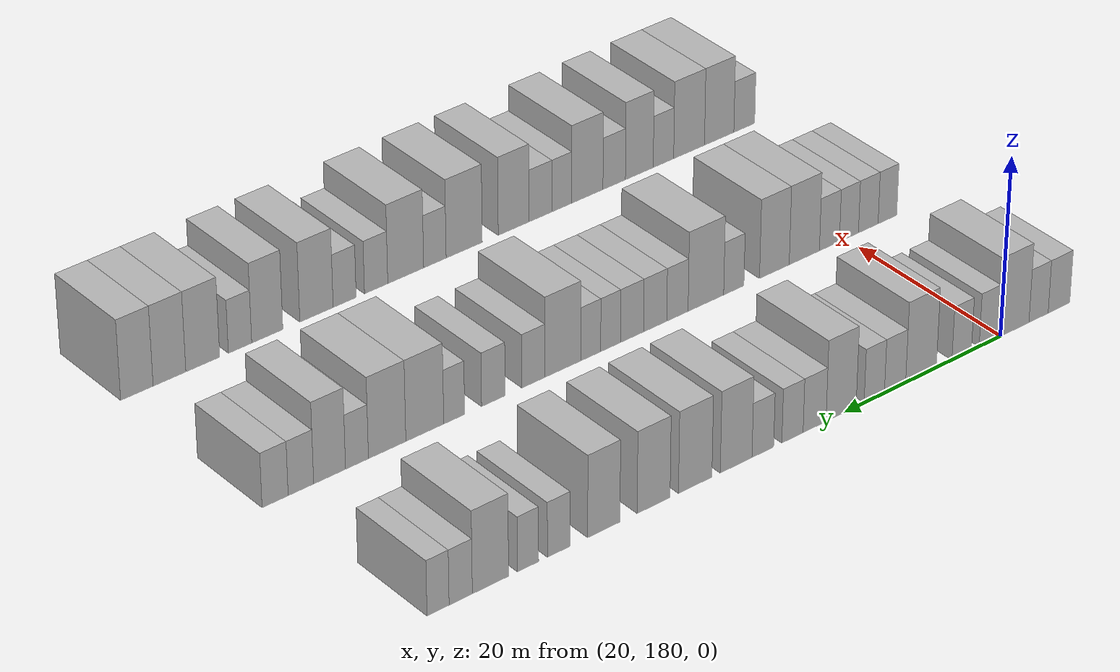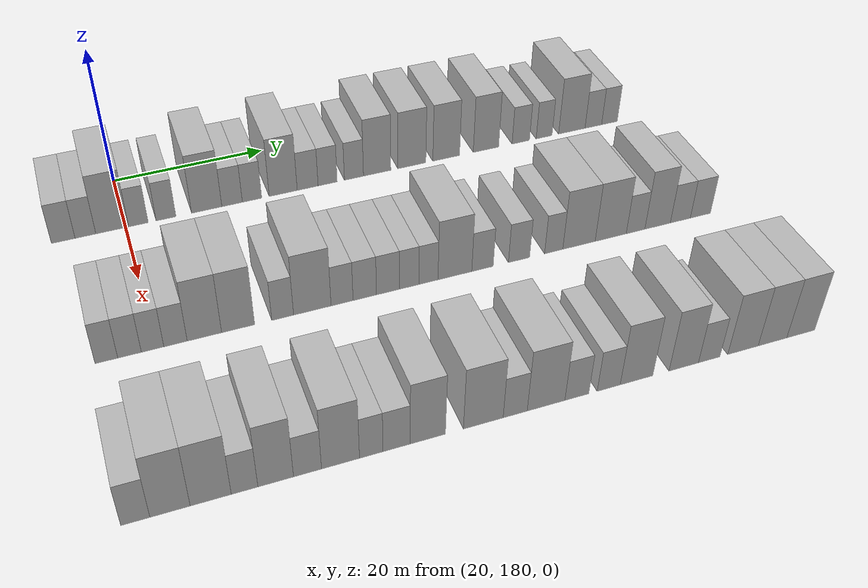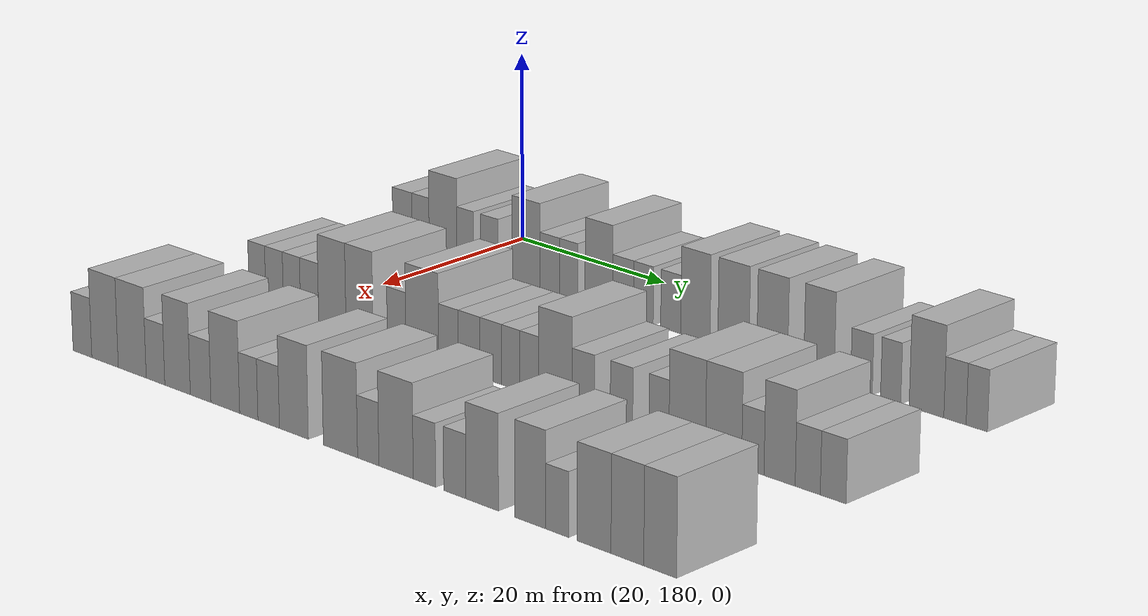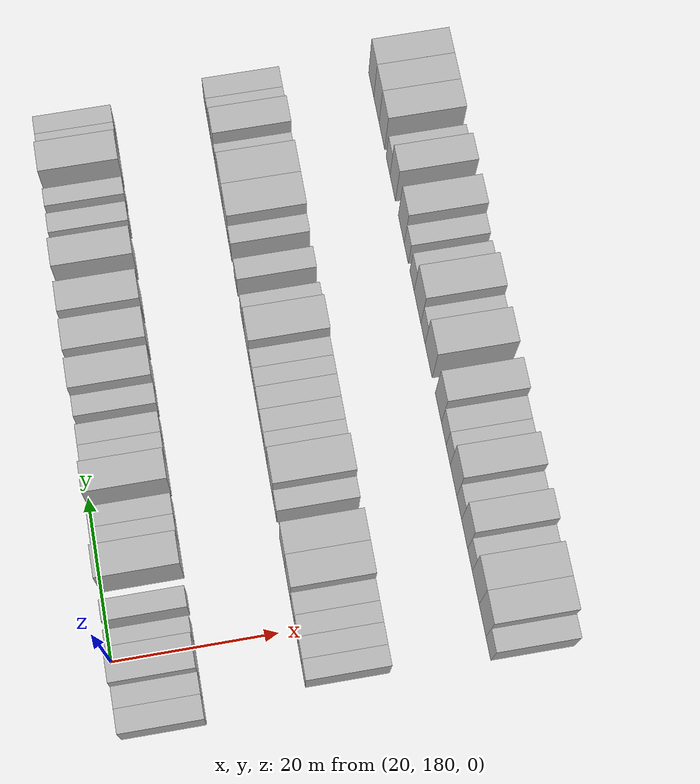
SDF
<sdf version="1.6">
 <world name="default">
  <model name="building_105">
   <static>1</static>
   <pose>25.0000 172.3407 0 0.000000 0.000000 0.000000</pose>
   <link name="link">
    <pose>0 0 3.00 0 0 0</pose>
    <collision name="collision"><geometry><box><size>10.0000 2.8734 6.0000</size></box></geometry></collision>
    <visual name="visual">
     <cast_shadows>0</cast_shadows>
     <geometry><box><size>10.0000 2.8734 6.0000</size></box></geometry>
     <material>
      <script>
       <uri>model://HANNAS_wall/materials/scripts</uri>
       <uri>model://HANNAS_wall/materials/textures</uri>
       <name>vrc/HANNAS_wall</name>
      </script>
     </material>
    </visual>
   </link>
  </model>
  <model name="building_106">
   <static>1</static>
   <pose>25.0000 175.0475 0 0.000000 0.000000 0.000000</pose>
   <link name="link">
    <pose>0 0 3.00 0 0 0</pose>
    <collision name="collision"><geometry><box><size>10.0000 2.5402 6.0000</size></box></geometry></collision>
    <visual name="visual">
     <cast_shadows>0</cast_shadows>
     <geometry><box><size>10.0000 2.5402 6.0000</size></box></geometry>
     <material>
      <script>
       <uri>model://HANNAS_wall/materials/scripts</uri>
       <uri>model://HANNAS_wall/materials/textures</uri>
       <name>vrc/HANNAS_wall</name>
      </script>
     </material>
    </visual>
   </link>
  </model>
  <model name="building_107">
   <static>1</static>
   <pose>25.0000 178.3508 0 0.000000 0.000000 0.000000</pose>
   <link name="link">
    <pose>0 0 4.50 0 0 0</pose>
    <collision name="collision"><geometry><box><size>10.0000 4.0666 9.0000</size></box></geometry></collision>
    <visual name="visual">
     <cast_shadows>0</cast_shadows>
     <geometry><box><size>10.0000 4.0666 9.0000</size></box></geometry>
     <material>
      <script>
       <uri>model://HANNAS_wall/materials/scripts</uri>
       <uri>model://HANNAS_wall/materials/textures</uri>
       <name>vrc/HANNAS_wall</name>
      </script>
     </material>
    </visual>
   </link>
  </model>
  <model name="building_108">
   <static>1</static>
   <pose>25.0000 181.6114 0 0.000000 0.000000 0.000000</pose>
   <link name="link">
    <pose>0 0 3.00 0 0 0</pose>
    <collision name="collision"><geometry><box><size>10.0000 2.4546 6.0000</size></box></geometry></collision>
    <visual name="visual">
     <cast_shadows>0</cast_shadows>
     <geometry><box><size>10.0000 2.4546 6.0000</size></box></geometry>
     <material>
      <script>
       <uri>model://HANNAS_wall/materials/scripts</uri>
       <uri>model://HANNAS_wall/materials/textures</uri>
       <name>vrc/HANNAS_wall</name>
      </script>
     </material>
    </visual>
   </link>
  </model>
  <model name="building_109">
   <static>1</static>
   <pose>25.0000 185.0974 0 0.000000 0.000000 0.000000</pose>
   <link name="link">
    <pose>0 0 3.00 0 0 0</pose>
    <collision name="collision"><geometry><box><size>10.0000 2.5174 6.0000</size></box></geometry></collision>
    <visual name="visual">
     <cast_shadows>0</cast_shadows>
     <geometry><box><size>10.0000 2.5174 6.0000</size></box></geometry>
     <material>
      <script>
       <uri>model://HANNAS_wall/materials/scripts</uri>
       <uri>model://HANNAS_wall/materials/textures</uri>
       <name>vrc/HANNAS_wall</name>
      </script>
     </material>
    </visual>
   </link>
  </model>
  <model name="building_110">
   <static>1</static>
   <pose>25.0000 190.3152 0 0.000000 0.000000 0.000000</pose>
   <link name="link">
    <pose>0 0 4.50 0 0 0</pose>
    <collision name="collision"><geometry><box><size>10.0000 3.9181 9.0000</size></box></geometry></collision>
    <visual name="visual">
     <cast_shadows>0</cast_shadows>
     <geometry><box><size>10.0000 3.9181 9.0000</size></box></geometry>
     <material>
      <script>
       <uri>model://HANNAS_wall/materials/scripts</uri>
       <uri>model://HANNAS_wall/materials/textures</uri>
       <name>vrc/HANNAS_wall</name>
      </script>
     </material>
    </visual>
   </link>
  </model>
  <model name="building_111">
   <static>1</static>
   <pose>25.0000 193.6157 0 0.000000 0.000000 0.000000</pose>
   <link name="link">
    <pose>0 0 3.00 0 0 0</pose>
    <collision name="collision"><geometry><box><size>10.0000 2.6829 6.0000</size></box></geometry></collision>
    <visual name="visual">
     <cast_shadows>0</cast_shadows>
     <geometry><box><size>10.0000 2.6829 6.0000</size></box></geometry>
     <material>
      <script>
       <uri>model://HANNAS_wall/materials/scripts</uri>
       <uri>model://HANNAS_wall/materials/textures</uri>
       <name>vrc/HANNAS_wall</name>
      </script>
     </material>
    </visual>
   </link>
  </model>
  <model name="building_112">
   <static>1</static>
   <pose>25.0000 196.2339 0 0.000000 0.000000 0.000000</pose>
   <link name="link">
    <pose>0 0 3.00 0 0 0</pose>
    <collision name="collision"><geometry><box><size>10.0000 2.5535 6.0000</size></box></geometry></collision>
    <visual name="visual">
     <cast_shadows>0</cast_shadows>
     <geometry><box><size>10.0000 2.5535 6.0000</size></box></geometry>
     <material>
      <script>
       <uri>model://HANNAS_wall/materials/scripts</uri>
       <uri>model://HANNAS_wall/materials/textures</uri>
       <name>vrc/HANNAS_wall</name>
      </script>
     </material>
    </visual>
   </link>
  </model>
  <model name="building_113">
   <static>1</static>
   <pose>25.0000 200.3856 0 0.000000 0.000000 0.000000</pose>
   <link name="link">
    <pose>0 0 4.50 0 0 0</pose>
    <collision name="collision"><geometry><box><size>10.0000 3.7498 9.0000</size></box></geometry></collision>
    <visual name="visual">
     <cast_shadows>0</cast_shadows>
     <geometry><box><size>10.0000 3.7498 9.0000</size></box></geometry>
     <material>
      <script>
       <uri>model://HANNAS_wall/materials/scripts</uri>
       <uri>model://HANNAS_wall/materials/textures</uri>
       <name>vrc/HANNAS_wall</name>
      </script>
     </material>
    </visual>
   </link>
  </model>
  <model name="building_114">
   <static>1</static>
   <pose>25.0000 203.6752 0 0.000000 0.000000 0.000000</pose>
   <link name="link">
    <pose>0 0 3.00 0 0 0</pose>
    <collision name="collision"><geometry><box><size>10.0000 2.8295 6.0000</size></box></geometry></collision>
    <visual name="visual">
     <cast_shadows>0</cast_shadows>
     <geometry><box><size>10.0000 2.8295 6.0000</size></box></geometry>
     <material>
      <script>
       <uri>model://HANNAS_wall/materials/scripts</uri>
       <uri>model://HANNAS_wall/materials/textures</uri>
       <name>vrc/HANNAS_wall</name>
      </script>
     </material>
    </visual>
   </link>
  </model>
  <model name="building_115">
   <static>1</static>
   <pose>25.0000 206.3929 0 0.000000 0.000000 0.000000</pose>
   <link name="link">
    <pose>0 0 3.00 0 0 0</pose>
    <collision name="collision"><geometry><box><size>10.0000 2.6058 6.0000</size></box></geometry></collision>
    <visual name="visual">
     <cast_shadows>0</cast_shadows>
     <geometry><box><size>10.0000 2.6058 6.0000</size></box></geometry>
     <material>
      <script>
       <uri>model://HANNAS_wall/materials/scripts</uri>
       <uri>model://HANNAS_wall/materials/textures</uri>
       <name>vrc/HANNAS_wall</name>
      </script>
     </material>
    </visual>
   </link>
  </model>
  <model name="building_116">
   <static>1</static>
   <pose>25.0000 210.0129 0 0.000000 0.000000 0.000000</pose>
   <link name="link">
    <pose>0 0 3.00 0 0 0</pose>
    <collision name="collision"><geometry><box><size>10.0000 2.6343 6.0000</size></box></geometry></collision>
    <visual name="visual">
     <cast_shadows>0</cast_shadows>
     <geometry><box><size>10.0000 2.6343 6.0000</size></box></geometry>
     <material>
      <script>
       <uri>model://HANNAS_wall/materials/scripts</uri>
       <uri>model://HANNAS_wall/materials/textures</uri>
       <name>vrc/HANNAS_wall</name>
      </script>
     </material>
    </visual>
   </link>
  </model>
  <model name="building_117">
   <static>1</static>
   <pose>25.0000 213.2417 0 0.000000 0.000000 0.000000</pose>
   <link name="link">
    <pose>0 0 4.50 0 0 0</pose>
    <collision name="collision"><geometry><box><size>10.0000 3.8233 9.0000</size></box></geometry></collision>
    <visual name="visual">
     <cast_shadows>0</cast_shadows>
     <geometry><box><size>10.0000 3.8233 9.0000</size></box></geometry>
     <material>
      <script>
       <uri>model://HANNAS_wall/materials/scripts</uri>
       <uri>model://HANNAS_wall/materials/textures</uri>
       <name>vrc/HANNAS_wall</name>
      </script>
     </material>
    </visual>
   </link>
  </model>
  <model name="building_118">
   <static>1</static>
   <pose>25.0000 218.1422 0 0.000000 0.000000 0.000000</pose>
   <link name="link">
    <pose>0 0 4.50 0 0 0</pose>
    <collision name="collision"><geometry><box><size>10.0000 3.9777 9.0000</size></box></geometry></collision>
    <visual name="visual">
     <cast_shadows>0</cast_shadows>
     <geometry><box><size>10.0000 3.9777 9.0000</size></box></geometry>
     <material>
      <script>
       <uri>model://HANNAS_wall/materials/scripts</uri>
       <uri>model://HANNAS_wall/materials/textures</uri>
       <name>vrc/HANNAS_wall</name>
      </script>
     </material>
    </visual>
   </link>
  </model>
  <model name="building_119">
   <static>1</static>
   <pose>25.0000 223.0648 0 0.000000 0.000000 0.000000</pose>
   <link name="link">
    <pose>0 0 4.50 0 0 0</pose>
    <collision name="collision"><geometry><box><size>10.0000 3.8676 9.0000</size></box></geometry></collision>
    <visual name="visual">
     <cast_shadows>0</cast_shadows>
     <geometry><box><size>10.0000 3.8676 9.0000</size></box></geometry>
     <material>
      <script>
       <uri>model://HANNAS_wall/materials/scripts</uri>
       <uri>model://HANNAS_wall/materials/textures</uri>
       <name>vrc/HANNAS_wall</name>
      </script>
     </material>
    </visual>
   </link>
  </model>
  <model name="building_120">
   <static>1</static>
   <pose>25.0000 228.8694 0 0.000000 0.000000 0.000000</pose>
   <link name="link">
    <pose>0 0 4.50 0 0 0</pose>
    <collision name="collision"><geometry><box><size>10.0000 3.7416 9.0000</size></box></geometry></collision>
    <visual name="visual">
     <cast_shadows>0</cast_shadows>
     <geometry><box><size>10.0000 3.7416 9.0000</size></box></geometry>
     <material>
      <script>
       <uri>model://HANNAS_wall/materials/scripts</uri>
       <uri>model://HANNAS_wall/materials/textures</uri>
       <name>vrc/HANNAS_wall</name>
      </script>
     </material>
    </visual>
   </link>
  </model>
  <model name="building_121">
   <static>1</static>
   <pose>25.0000 234.0469 0 0.000000 0.000000 0.000000</pose>
   <link name="link">
    <pose>0 0 3.00 0 0 0</pose>
    <collision name="collision"><geometry><box><size>10.0000 2.6135 6.0000</size></box></geometry></collision>
    <visual name="visual">
     <cast_shadows>0</cast_shadows>
     <geometry><box><size>10.0000 2.6135 6.0000</size></box></geometry>
     <material>
      <script>
       <uri>model://HANNAS_wall/materials/scripts</uri>
       <uri>model://HANNAS_wall/materials/textures</uri>
       <name>vrc/HANNAS_wall</name>
      </script>
     </material>
    </visual>
   </link>
  </model>
  <model name="building_122">
   <static>1</static>
   <pose>25.0000 237.5542 0 0.000000 0.000000 0.000000</pose>
   <link name="link">
    <pose>0 0 3.00 0 0 0</pose>
    <collision name="collision"><geometry><box><size>10.0000 2.4011 6.0000</size></box></geometry></collision>
    <visual name="visual">
     <cast_shadows>0</cast_shadows>
     <geometry><box><size>10.0000 2.4011 6.0000</size></box></geometry>
     <material>
      <script>
       <uri>model://HANNAS_wall/materials/scripts</uri>
       <uri>model://HANNAS_wall/materials/textures</uri>
       <name>vrc/HANNAS_wall</name>
      </script>
     </material>
    </visual>
   </link>
  </model>
  <model name="building_123">
   <static>1</static>
   <pose>25.0000 241.7866 0 0.000000 0.000000 0.000000</pose>
   <link name="link">
    <pose>0 0 4.50 0 0 0</pose>
    <collision name="collision"><geometry><box><size>10.0000 4.0637 9.0000</size></box></geometry></collision>
    <visual name="visual">
     <cast_shadows>0</cast_shadows>
     <geometry><box><size>10.0000 4.0637 9.0000</size></box></geometry>
     <material>
      <script>
       <uri>model://HANNAS_wall/materials/scripts</uri>
       <uri>model://HANNAS_wall/materials/textures</uri>
       <name>vrc/HANNAS_wall</name>
      </script>
     </material>
    </visual>
   </link>
  </model>
  <model name="building_124">
   <static>1</static>
   <pose>25.0000 245.1089 0 0.000000 0.000000 0.000000</pose>
   <link name="link">
    <pose>0 0 3.00 0 0 0</pose>
    <collision name="collision"><geometry><box><size>10.0000 2.5809 6.0000</size></box></geometry></collision>
    <visual name="visual">
     <cast_shadows>0</cast_shadows>
     <geometry><box><size>10.0000 2.5809 6.0000</size></box></geometry>
     <material>
      <script>
       <uri>model://HANNAS_wall/materials/scripts</uri>
       <uri>model://HANNAS_wall/materials/textures</uri>
       <name>vrc/HANNAS_wall</name>
      </script>
     </material>
    </visual>
   </link>
  </model>
  <model name="building_125">
   <static>1</static>
   <pose>25.0000 247.6204 0 0.000000 0.000000 0.000000</pose>
   <link name="link">
    <pose>0 0 3.00 0 0 0</pose>
    <collision name="collision"><geometry><box><size>10.0000 2.4420 6.0000</size></box></geometry></collision>
    <visual name="visual">
     <cast_shadows>0</cast_shadows>
     <geometry><box><size>10.0000 2.4420 6.0000</size></box></geometry>
     <material>
      <script>
       <uri>model://HANNAS_wall/materials/scripts</uri>
       <uri>model://HANNAS_wall/materials/textures</uri>
       <name>vrc/HANNAS_wall</name>
      </script>
     </material>
    </visual>
   </link>
  </model>
  <model name="building_235">
   <static>1</static>
   <pose>47.0000 174.4356 0 0.000000 0.000000 0.000000</pose>
   <link name="link">
    <pose>0 0 3.00 0 0 0</pose>
    <collision name="collision"><geometry><box><size>10.0000 2.4829 6.0000</size></box></geometry></collision>
    <visual name="visual">
     <cast_shadows>0</cast_shadows>
     <geometry><box><size>10.0000 2.4829 6.0000</size></box></geometry>
     <material>
      <script>
       <uri>model://HANNAS_wall/materials/scripts</uri>
       <uri>model://HANNAS_wall/materials/textures</uri>
       <name>vrc/HANNAS_wall</name>
      </script>
     </material>
    </visual>
   </link>
  </model>
  <model name="building_236">
   <static>1</static>
   <pose>47.0000 176.9797 0 0.000000 0.000000 0.000000</pose>
   <link name="link">
    <pose>0 0 3.00 0 0 0</pose>
    <collision name="collision"><geometry><box><size>10.0000 2.6053 6.0000</size></box></geometry></collision>
    <visual name="visual">
     <cast_shadows>0</cast_shadows>
     <geometry><box><size>10.0000 2.6053 6.0000</size></box></geometry>
     <material>
      <script>
       <uri>model://HANNAS_wall/materials/scripts</uri>
       <uri>model://HANNAS_wall/materials/textures</uri>
       <name>vrc/HANNAS_wall</name>
      </script>
     </material>
    </visual>
   </link>
  </model>
  <model name="building_237">
   <static>1</static>
   <pose>47.0000 179.5363 0 0.000000 0.000000 0.000000</pose>
   <link name="link">
    <pose>0 0 3.00 0 0 0</pose>
    <collision name="collision"><geometry><box><size>10.0000 2.5080 6.0000</size></box></geometry></collision>
    <visual name="visual">
     <cast_shadows>0</cast_shadows>
     <geometry><box><size>10.0000 2.5080 6.0000</size></box></geometry>
     <material>
      <script>
       <uri>model://HANNAS_wall/materials/scripts</uri>
       <uri>model://HANNAS_wall/materials/textures</uri>
       <name>vrc/HANNAS_wall</name>
      </script>
     </material>
    </visual>
   </link>
  </model>
  <model name="building_238">
   <static>1</static>
   <pose>47.0000 182.1052 0 0.000000 0.000000 0.000000</pose>
   <link name="link">
    <pose>0 0 3.00 0 0 0</pose>
    <collision name="collision"><geometry><box><size>10.0000 2.6297 6.0000</size></box></geometry></collision>
    <visual name="visual">
     <cast_shadows>0</cast_shadows>
     <geometry><box><size>10.0000 2.6297 6.0000</size></box></geometry>
     <material>
      <script>
       <uri>model://HANNAS_wall/materials/scripts</uri>
       <uri>model://HANNAS_wall/materials/textures</uri>
       <name>vrc/HANNAS_wall</name>
      </script>
     </material>
    </visual>
   </link>
  </model>
  <model name="building_239">
   <static>1</static>
   <pose>47.0000 185.3836 0 0.000000 0.000000 0.000000</pose>
   <link name="link">
    <pose>0 0 4.50 0 0 0</pose>
    <collision name="collision"><geometry><box><size>10.0000 3.9271 9.0000</size></box></geometry></collision>
    <visual name="visual">
     <cast_shadows>0</cast_shadows>
     <geometry><box><size>10.0000 3.9271 9.0000</size></box></geometry>
     <material>
      <script>
       <uri>model://HANNAS_wall/materials/scripts</uri>
       <uri>model://HANNAS_wall/materials/textures</uri>
       <name>vrc/HANNAS_wall</name>
      </script>
     </material>
    </visual>
   </link>
  </model>
  <model name="building_240">
   <static>1</static>
   <pose>47.0000 189.2624 0 0.000000 0.000000 0.000000</pose>
   <link name="link">
    <pose>0 0 4.50 0 0 0</pose>
    <collision name="collision"><geometry><box><size>10.0000 3.8306 9.0000</size></box></geometry></collision>
    <visual name="visual">
     <cast_shadows>0</cast_shadows>
     <geometry><box><size>10.0000 3.8306 9.0000</size></box></geometry>
     <material>
      <script>
       <uri>model://HANNAS_wall/materials/scripts</uri>
       <uri>model://HANNAS_wall/materials/textures</uri>
       <name>vrc/HANNAS_wall</name>
      </script>
     </material>
    </visual>
   </link>
  </model>
  <model name="building_241">
   <static>1</static>
   <pose>47.0000 194.4672 0 0.000000 0.000000 0.000000</pose>
   <link name="link">
    <pose>0 0 3.00 0 0 0</pose>
    <collision name="collision"><geometry><box><size>10.0000 2.5790 6.0000</size></box></geometry></collision>
    <visual name="visual">
     <cast_shadows>0</cast_shadows>
     <geometry><box><size>10.0000 2.5790 6.0000</size></box></geometry>
     <material>
      <script>
       <uri>model://HANNAS_wall/materials/scripts</uri>
       <uri>model://HANNAS_wall/materials/textures</uri>
       <name>vrc/HANNAS_wall</name>
      </script>
     </material>
    </visual>
   </link>
  </model>
  <model name="building_242">
   <static>1</static>
   <pose>47.0000 198.0039 0 0.000000 0.000000 0.000000</pose>
   <link name="link">
    <pose>0 0 4.50 0 0 0</pose>
    <collision name="collision"><geometry><box><size>10.0000 4.4943 9.0000</size></box></geometry></collision>
    <visual name="visual">
     <cast_shadows>0</cast_shadows>
     <geometry><box><size>10.0000 4.4943 9.0000</size></box></geometry>
     <material>
      <script>
       <uri>model://HANNAS_wall/materials/scripts</uri>
       <uri>model://HANNAS_wall/materials/textures</uri>
       <name>vrc/HANNAS_wall</name>
      </script>
     </material>
    </visual>
   </link>
  </model>
  <model name="building_243">
   <static>1</static>
   <pose>47.0000 201.5876 0 0.000000 0.000000 0.000000</pose>
   <link name="link">
    <pose>0 0 3.00 0 0 0</pose>
    <collision name="collision"><geometry><box><size>10.0000 2.6731 6.0000</size></box></geometry></collision>
    <visual name="visual">
     <cast_shadows>0</cast_shadows>
     <geometry><box><size>10.0000 2.6731 6.0000</size></box></geometry>
     <material>
      <script>
       <uri>model://HANNAS_wall/materials/scripts</uri>
       <uri>model://HANNAS_wall/materials/textures</uri>
       <name>vrc/HANNAS_wall</name>
      </script>
     </material>
    </visual>
   </link>
  </model>
  <model name="building_244">
   <static>1</static>
   <pose>47.0000 204.3610 0 0.000000 0.000000 0.000000</pose>
   <link name="link">
    <pose>0 0 3.00 0 0 0</pose>
    <collision name="collision"><geometry><box><size>10.0000 2.8737 6.0000</size></box></geometry></collision>
    <visual name="visual">
     <cast_shadows>0</cast_shadows>
     <geometry><box><size>10.0000 2.8737 6.0000</size></box></geometry>
     <material>
      <script>
       <uri>model://HANNAS_wall/materials/scripts</uri>
       <uri>model://HANNAS_wall/materials/textures</uri>
       <name>vrc/HANNAS_wall</name>
      </script>
     </material>
    </visual>
   </link>
  </model>
  <model name="building_245">
   <static>1</static>
   <pose>47.0000 207.2297 0 0.000000 0.000000 0.000000</pose>
   <link name="link">
    <pose>0 0 3.00 0 0 0</pose>
    <collision name="collision"><geometry><box><size>10.0000 2.8636 6.0000</size></box></geometry></collision>
    <visual name="visual">
     <cast_shadows>0</cast_shadows>
     <geometry><box><size>10.0000 2.8636 6.0000</size></box></geometry>
     <material>
      <script>
       <uri>model://HANNAS_wall/materials/scripts</uri>
       <uri>model://HANNAS_wall/materials/textures</uri>
       <name>vrc/HANNAS_wall</name>
      </script>
     </material>
    </visual>
   </link>
  </model>
  <model name="building_246">
   <static>1</static>
   <pose>47.0000 209.8744 0 0.000000 0.000000 0.000000</pose>
   <link name="link">
    <pose>0 0 3.00 0 0 0</pose>
    <collision name="collision"><geometry><box><size>10.0000 2.4258 6.0000</size></box></geometry></collision>
    <visual name="visual">
     <cast_shadows>0</cast_shadows>
     <geometry><box><size>10.0000 2.4258 6.0000</size></box></geometry>
     <material>
      <script>
       <uri>model://HANNAS_wall/materials/scripts</uri>
       <uri>model://HANNAS_wall/materials/textures</uri>
       <name>vrc/HANNAS_wall</name>
      </script>
     </material>
    </visual>
   </link>
  </model>
  <model name="building_247">
   <static>1</static>
   <pose>47.0000 212.2955 0 0.000000 0.000000 0.000000</pose>
   <link name="link">
    <pose>0 0 3.00 0 0 0</pose>
    <collision name="collision"><geometry><box><size>10.0000 2.4165 6.0000</size></box></geometry></collision>
    <visual name="visual">
     <cast_shadows>0</cast_shadows>
     <geometry><box><size>10.0000 2.4165 6.0000</size></box></geometry>
     <material>
      <script>
       <uri>model://HANNAS_wall/materials/scripts</uri>
       <uri>model://HANNAS_wall/materials/textures</uri>
       <name>vrc/HANNAS_wall</name>
      </script>
     </material>
    </visual>
   </link>
  </model>
  <model name="building_248">
   <static>1</static>
   <pose>47.0000 215.6705 0 0.000000 0.000000 0.000000</pose>
   <link name="link">
    <pose>0 0 4.50 0 0 0</pose>
    <collision name="collision"><geometry><box><size>10.0000 4.3336 9.0000</size></box></geometry></collision>
    <visual name="visual">
     <cast_shadows>0</cast_shadows>
     <geometry><box><size>10.0000 4.3336 9.0000</size></box></geometry>
     <material>
      <script>
       <uri>model://HANNAS_wall/materials/scripts</uri>
       <uri>model://HANNAS_wall/materials/textures</uri>
       <name>vrc/HANNAS_wall</name>
      </script>
     </material>
    </visual>
   </link>
  </model>
  <model name="building_249">
   <static>1</static>
   <pose>47.0000 219.2306 0 0.000000 0.000000 0.000000</pose>
   <link name="link">
    <pose>0 0 3.00 0 0 0</pose>
    <collision name="collision"><geometry><box><size>10.0000 2.7866 6.0000</size></box></geometry></collision>
    <visual name="visual">
     <cast_shadows>0</cast_shadows>
     <geometry><box><size>10.0000 2.7866 6.0000</size></box></geometry>
     <material>
      <script>
       <uri>model://HANNAS_wall/materials/scripts</uri>
       <uri>model://HANNAS_wall/materials/textures</uri>
       <name>vrc/HANNAS_wall</name>
      </script>
     </material>
    </visual>
   </link>
  </model>
  <model name="building_250">
   <static>1</static>
   <pose>47.0000 224.0211 0 0.000000 0.000000 0.000000</pose>
   <link name="link">
    <pose>0 0 3.00 0 0 0</pose>
    <collision name="collision"><geometry><box><size>10.0000 2.7943 6.0000</size></box></geometry></collision>
    <visual name="visual">
     <cast_shadows>0</cast_shadows>
     <geometry><box><size>10.0000 2.7943 6.0000</size></box></geometry>
     <material>
      <script>
       <uri>model://HANNAS_wall/materials/scripts</uri>
       <uri>model://HANNAS_wall/materials/textures</uri>
       <name>vrc/HANNAS_wall</name>
      </script>
     </material>
    </visual>
   </link>
  </model>
  <model name="building_251">
   <static>1</static>
   <pose>47.0000 228.6425 0 0.000000 0.000000 0.000000</pose>
   <link name="link">
    <pose>0 0 3.00 0 0 0</pose>
    <collision name="collision"><geometry><box><size>10.0000 2.4486 6.0000</size></box></geometry></collision>
    <visual name="visual">
     <cast_shadows>0</cast_shadows>
     <geometry><box><size>10.0000 2.4486 6.0000</size></box></geometry>
     <material>
      <script>
       <uri>model://HANNAS_wall/materials/scripts</uri>
       <uri>model://HANNAS_wall/materials/textures</uri>
       <name>vrc/HANNAS_wall</name>
      </script>
     </material>
    </visual>
   </link>
  </model>
  <model name="building_252">
   <static>1</static>
   <pose>47.0000 232.0695 0 0.000000 0.000000 0.000000</pose>
   <link name="link">
    <pose>0 0 4.50 0 0 0</pose>
    <collision name="collision"><geometry><box><size>10.0000 4.4053 9.0000</size></box></geometry></collision>
    <visual name="visual">
     <cast_shadows>0</cast_shadows>
     <geometry><box><size>10.0000 4.4053 9.0000</size></box></geometry>
     <material>
      <script>
       <uri>model://HANNAS_wall/materials/scripts</uri>
       <uri>model://HANNAS_wall/materials/textures</uri>
       <name>vrc/HANNAS_wall</name>
      </script>
     </material>
    </visual>
   </link>
  </model>
  <model name="building_253">
   <static>1</static>
   <pose>47.0000 236.4231 0 0.000000 0.000000 0.000000</pose>
   <link name="link">
    <pose>0 0 4.50 0 0 0</pose>
    <collision name="collision"><geometry><box><size>10.0000 4.3019 9.0000</size></box></geometry></collision>
    <visual name="visual">
     <cast_shadows>0</cast_shadows>
     <geometry><box><size>10.0000 4.3019 9.0000</size></box></geometry>
     <material>
      <script>
       <uri>model://HANNAS_wall/materials/scripts</uri>
       <uri>model://HANNAS_wall/materials/textures</uri>
       <name>vrc/HANNAS_wall</name>
      </script>
     </material>
    </visual>
   </link>
  </model>
  <model name="building_254">
   <static>1</static>
   <pose>47.0000 239.8808 0 0.000000 0.000000 0.000000</pose>
   <link name="link">
    <pose>0 0 3.00 0 0 0</pose>
    <collision name="collision"><geometry><box><size>10.0000 2.6136 6.0000</size></box></geometry></collision>
    <visual name="visual">
     <cast_shadows>0</cast_shadows>
     <geometry><box><size>10.0000 2.6136 6.0000</size></box></geometry>
     <material>
      <script>
       <uri>model://HANNAS_wall/materials/scripts</uri>
       <uri>model://HANNAS_wall/materials/textures</uri>
       <name>vrc/HANNAS_wall</name>
      </script>
     </material>
    </visual>
   </link>
  </model>
  <model name="building_255">
   <static>1</static>
   <pose>47.0000 242.9915 0 0.000000 0.000000 0.000000</pose>
   <link name="link">
    <pose>0 0 4.50 0 0 0</pose>
    <collision name="collision"><geometry><box><size>10.0000 3.6078 9.0000</size></box></geometry></collision>
    <visual name="visual">
     <cast_shadows>0</cast_shadows>
     <geometry><box><size>10.0000 3.6078 9.0000</size></box></geometry>
     <material>
      <script>
       <uri>model://HANNAS_wall/materials/scripts</uri>
       <uri>model://HANNAS_wall/materials/textures</uri>
       <name>vrc/HANNAS_wall</name>
      </script>
     </material>
    </visual>
   </link>
  </model>
  <model name="building_256">
   <static>1</static>
   <pose>47.0000 246.2270 0 0.000000 0.000000 0.000000</pose>
   <link name="link">
    <pose>0 0 3.00 0 0 0</pose>
    <collision name="collision"><geometry><box><size>10.0000 2.8630 6.0000</size></box></geometry></collision>
    <visual name="visual">
     <cast_shadows>0</cast_shadows>
     <geometry><box><size>10.0000 2.8630 6.0000</size></box></geometry>
     <material>
      <script>
       <uri>model://HANNAS_wall/materials/scripts</uri>
       <uri>model://HANNAS_wall/materials/textures</uri>
       <name>vrc/HANNAS_wall</name>
      </script>
     </material>
    </visual>
   </link>
  </model>
  <model name="building_257">
   <static>1</static>
   <pose>47.0000 249.1131 0 0.000000 0.000000 0.000000</pose>
   <link name="link">
    <pose>0 0 3.00 0 0 0</pose>
    <collision name="collision"><geometry><box><size>10.0000 2.9093 6.0000</size></box></geometry></collision>
    <visual name="visual">
     <cast_shadows>0</cast_shadows>
     <geometry><box><size>10.0000 2.9093 6.0000</size></box></geometry>
     <material>
      <script>
       <uri>model://HANNAS_wall/materials/scripts</uri>
       <uri>model://HANNAS_wall/materials/textures</uri>
       <name>vrc/HANNAS_wall</name>
      </script>
     </material>
    </visual>
   </link>
  </model>
  <model name="building_369">
   <static>1</static>
   <pose>69.0000 174.0059 0 0.000000 0.000000 0.000000</pose>
   <link name="link">
    <pose>0 0 3.00 0 0 0</pose>
    <collision name="collision"><geometry><box><size>10.0000 2.8029 6.0000</size></box></geometry></collision>
    <visual name="visual">
     <cast_shadows>0</cast_shadows>
     <geometry><box><size>10.0000 2.8029 6.0000</size></box></geometry>
     <material>
      <script>
       <uri>model://HANNAS_wall/materials/scripts</uri>
       <uri>model://HANNAS_wall/materials/textures</uri>
       <name>vrc/HANNAS_wall</name>
      </script>
     </material>
    </visual>
   </link>
  </model>
  <model name="building_370">
   <static>1</static>
   <pose>69.0000 177.3705 0 0.000000 0.000000 0.000000</pose>
   <link name="link">
    <pose>0 0 4.50 0 0 0</pose>
    <collision name="collision"><geometry><box><size>10.0000 3.9263 9.0000</size></box></geometry></collision>
    <visual name="visual">
     <cast_shadows>0</cast_shadows>
     <geometry><box><size>10.0000 3.9263 9.0000</size></box></geometry>
     <material>
      <script>
       <uri>model://HANNAS_wall/materials/scripts</uri>
       <uri>model://HANNAS_wall/materials/textures</uri>
       <name>vrc/HANNAS_wall</name>
      </script>
     </material>
    </visual>
   </link>
  </model>
  <model name="building_371">
   <static>1</static>
   <pose>69.0000 181.3745 0 0.000000 0.000000 0.000000</pose>
   <link name="link">
    <pose>0 0 4.50 0 0 0</pose>
    <collision name="collision"><geometry><box><size>10.0000 4.0818 9.0000</size></box></geometry></collision>
    <visual name="visual">
     <cast_shadows>0</cast_shadows>
     <geometry><box><size>10.0000 4.0818 9.0000</size></box></geometry>
     <material>
      <script>
       <uri>model://HANNAS_wall/materials/scripts</uri>
       <uri>model://HANNAS_wall/materials/textures</uri>
       <name>vrc/HANNAS_wall</name>
      </script>
     </material>
    </visual>
   </link>
  </model>
  <model name="building_372">
   <static>1</static>
   <pose>69.0000 184.7565 0 0.000000 0.000000 0.000000</pose>
   <link name="link">
    <pose>0 0 3.00 0 0 0</pose>
    <collision name="collision"><geometry><box><size>10.0000 2.6822 6.0000</size></box></geometry></collision>
    <visual name="visual">
     <cast_shadows>0</cast_shadows>
     <geometry><box><size>10.0000 2.6822 6.0000</size></box></geometry>
     <material>
      <script>
       <uri>model://HANNAS_wall/materials/scripts</uri>
       <uri>model://HANNAS_wall/materials/textures</uri>
       <name>vrc/HANNAS_wall</name>
      </script>
     </material>
    </visual>
   </link>
  </model>
  <model name="building_373">
   <static>1</static>
   <pose>69.0000 187.9176 0 0.000000 0.000000 0.000000</pose>
   <link name="link">
    <pose>0 0 4.50 0 0 0</pose>
    <collision name="collision"><geometry><box><size>10.0000 3.6400 9.0000</size></box></geometry></collision>
    <visual name="visual">
     <cast_shadows>0</cast_shadows>
     <geometry><box><size>10.0000 3.6400 9.0000</size></box></geometry>
     <material>
      <script>
       <uri>model://HANNAS_wall/materials/scripts</uri>
       <uri>model://HANNAS_wall/materials/textures</uri>
       <name>vrc/HANNAS_wall</name>
      </script>
     </material>
    </visual>
   </link>
  </model>
  <model name="building_374">
   <static>1</static>
   <pose>69.0000 191.1922 0 0.000000 0.000000 0.000000</pose>
   <link name="link">
    <pose>0 0 3.00 0 0 0</pose>
    <collision name="collision"><geometry><box><size>10.0000 2.9091 6.0000</size></box></geometry></collision>
    <visual name="visual">
     <cast_shadows>0</cast_shadows>
     <geometry><box><size>10.0000 2.9091 6.0000</size></box></geometry>
     <material>
      <script>
       <uri>model://HANNAS_wall/materials/scripts</uri>
       <uri>model://HANNAS_wall/materials/textures</uri>
       <name>vrc/HANNAS_wall</name>
      </script>
     </material>
    </visual>
   </link>
  </model>
  <model name="building_375">
   <static>1</static>
   <pose>69.0000 194.6466 0 0.000000 0.000000 0.000000</pose>
   <link name="link">
    <pose>0 0 4.50 0 0 0</pose>
    <collision name="collision"><geometry><box><size>10.0000 3.9998 9.0000</size></box></geometry></collision>
    <visual name="visual">
     <cast_shadows>0</cast_shadows>
     <geometry><box><size>10.0000 3.9998 9.0000</size></box></geometry>
     <material>
      <script>
       <uri>model://HANNAS_wall/materials/scripts</uri>
       <uri>model://HANNAS_wall/materials/textures</uri>
       <name>vrc/HANNAS_wall</name>
      </script>
     </material>
    </visual>
   </link>
  </model>
  <model name="building_376">
   <static>1</static>
   <pose>69.0000 197.9019 0 0.000000 0.000000 0.000000</pose>
   <link name="link">
    <pose>0 0 3.00 0 0 0</pose>
    <collision name="collision"><geometry><box><size>10.0000 2.5108 6.0000</size></box></geometry></collision>
    <visual name="visual">
     <cast_shadows>0</cast_shadows>
     <geometry><box><size>10.0000 2.5108 6.0000</size></box></geometry>
     <material>
      <script>
       <uri>model://HANNAS_wall/materials/scripts</uri>
       <uri>model://HANNAS_wall/materials/textures</uri>
       <name>vrc/HANNAS_wall</name>
      </script>
     </material>
    </visual>
   </link>
  </model>
  <model name="building_377">
   <static>1</static>
   <pose>69.0000 200.6226 0 0.000000 0.000000 0.000000</pose>
   <link name="link">
    <pose>0 0 3.00 0 0 0</pose>
    <collision name="collision"><geometry><box><size>10.0000 2.9305 6.0000</size></box></geometry></collision>
    <visual name="visual">
     <cast_shadows>0</cast_shadows>
     <geometry><box><size>10.0000 2.9305 6.0000</size></box></geometry>
     <material>
      <script>
       <uri>model://HANNAS_wall/materials/scripts</uri>
       <uri>model://HANNAS_wall/materials/textures</uri>
       <name>vrc/HANNAS_wall</name>
      </script>
     </material>
    </visual>
   </link>
  </model>
  <model name="building_378">
   <static>1</static>
   <pose>69.0000 204.0256 0 0.000000 0.000000 0.000000</pose>
   <link name="link">
    <pose>0 0 4.50 0 0 0</pose>
    <collision name="collision"><geometry><box><size>10.0000 3.8755 9.0000</size></box></geometry></collision>
    <visual name="visual">
     <cast_shadows>0</cast_shadows>
     <geometry><box><size>10.0000 3.8755 9.0000</size></box></geometry>
     <material>
      <script>
       <uri>model://HANNAS_wall/materials/scripts</uri>
       <uri>model://HANNAS_wall/materials/textures</uri>
       <name>vrc/HANNAS_wall</name>
      </script>
     </material>
    </visual>
   </link>
  </model>
  <model name="building_379">
   <static>1</static>
   <pose>69.0000 210.2030 0 0.000000 0.000000 0.000000</pose>
   <link name="link">
    <pose>0 0 4.50 0 0 0</pose>
    <collision name="collision"><geometry><box><size>10.0000 4.4794 9.0000</size></box></geometry></collision>
    <visual name="visual">
     <cast_shadows>0</cast_shadows>
     <geometry><box><size>10.0000 4.4794 9.0000</size></box></geometry>
     <material>
      <script>
       <uri>model://HANNAS_wall/materials/scripts</uri>
       <uri>model://HANNAS_wall/materials/textures</uri>
       <name>vrc/HANNAS_wall</name>
      </script>
     </material>
    </visual>
   </link>
  </model>
  <model name="building_380">
   <static>1</static>
   <pose>69.0000 213.8230 0 0.000000 0.000000 0.000000</pose>
   <link name="link">
    <pose>0 0 3.00 0 0 0</pose>
    <collision name="collision"><geometry><box><size>10.0000 2.7606 6.0000</size></box></geometry></collision>
    <visual name="visual">
     <cast_shadows>0</cast_shadows>
     <geometry><box><size>10.0000 2.7606 6.0000</size></box></geometry>
     <material>
      <script>
       <uri>model://HANNAS_wall/materials/scripts</uri>
       <uri>model://HANNAS_wall/materials/textures</uri>
       <name>vrc/HANNAS_wall</name>
      </script>
     </material>
    </visual>
   </link>
  </model>
  <model name="building_381">
   <static>1</static>
   <pose>69.0000 217.3931 0 0.000000 0.000000 0.000000</pose>
   <link name="link">
    <pose>0 0 4.50 0 0 0</pose>
    <collision name="collision"><geometry><box><size>10.0000 4.3794 9.0000</size></box></geometry></collision>
    <visual name="visual">
     <cast_shadows>0</cast_shadows>
     <geometry><box><size>10.0000 4.3794 9.0000</size></box></geometry>
     <material>
      <script>
       <uri>model://HANNAS_wall/materials/scripts</uri>
       <uri>model://HANNAS_wall/materials/textures</uri>
       <name>vrc/HANNAS_wall</name>
      </script>
     </material>
    </visual>
   </link>
  </model>
  <model name="building_382">
   <static>1</static>
   <pose>69.0000 220.9917 0 0.000000 0.000000 0.000000</pose>
   <link name="link">
    <pose>0 0 3.00 0 0 0</pose>
    <collision name="collision"><geometry><box><size>10.0000 2.8178 6.0000</size></box></geometry></collision>
    <visual name="visual">
     <cast_shadows>0</cast_shadows>
     <geometry><box><size>10.0000 2.8178 6.0000</size></box></geometry>
     <material>
      <script>
       <uri>model://HANNAS_wall/materials/scripts</uri>
       <uri>model://HANNAS_wall/materials/textures</uri>
       <name>vrc/HANNAS_wall</name>
      </script>
     </material>
    </visual>
   </link>
  </model>
  <model name="building_383">
   <static>1</static>
   <pose>69.0000 224.7800 0 0.000000 0.000000 0.000000</pose>
   <link name="link">
    <pose>0 0 3.00 0 0 0</pose>
    <collision name="collision"><geometry><box><size>10.0000 2.7589 6.0000</size></box></geometry></collision>
    <visual name="visual">
     <cast_shadows>0</cast_shadows>
     <geometry><box><size>10.0000 2.7589 6.0000</size></box></geometry>
     <material>
      <script>
       <uri>model://HANNAS_wall/materials/scripts</uri>
       <uri>model://HANNAS_wall/materials/textures</uri>
       <name>vrc/HANNAS_wall</name>
      </script>
     </material>
    </visual>
   </link>
  </model>
  <model name="building_384">
   <static>1</static>
   <pose>69.0000 228.1413 0 0.000000 0.000000 0.000000</pose>
   <link name="link">
    <pose>0 0 4.50 0 0 0</pose>
    <collision name="collision"><geometry><box><size>10.0000 3.9638 9.0000</size></box></geometry></collision>
    <visual name="visual">
     <cast_shadows>0</cast_shadows>
     <geometry><box><size>10.0000 3.9638 9.0000</size></box></geometry>
     <material>
      <script>
       <uri>model://HANNAS_wall/materials/scripts</uri>
       <uri>model://HANNAS_wall/materials/textures</uri>
       <name>vrc/HANNAS_wall</name>
      </script>
     </material>
    </visual>
   </link>
  </model>
  <model name="building_385">
   <static>1</static>
   <pose>69.0000 233.9501 0 0.000000 0.000000 0.000000</pose>
   <link name="link">
    <pose>0 0 4.50 0 0 0</pose>
    <collision name="collision"><geometry><box><size>10.0000 3.6537 9.0000</size></box></geometry></collision>
    <visual name="visual">
     <cast_shadows>0</cast_shadows>
     <geometry><box><size>10.0000 3.6537 9.0000</size></box></geometry>
     <material>
      <script>
       <uri>model://HANNAS_wall/materials/scripts</uri>
       <uri>model://HANNAS_wall/materials/textures</uri>
       <name>vrc/HANNAS_wall</name>
      </script>
     </material>
    </visual>
   </link>
  </model>
  <model name="building_386">
   <static>1</static>
   <pose>69.0000 237.1344 0 0.000000 0.000000 0.000000</pose>
   <link name="link">
    <pose>0 0 3.00 0 0 0</pose>
    <collision name="collision"><geometry><box><size>10.0000 2.7149 6.0000</size></box></geometry></collision>
    <visual name="visual">
     <cast_shadows>0</cast_shadows>
     <geometry><box><size>10.0000 2.7149 6.0000</size></box></geometry>
     <material>
      <script>
       <uri>model://HANNAS_wall/materials/scripts</uri>
       <uri>model://HANNAS_wall/materials/textures</uri>
       <name>vrc/HANNAS_wall</name>
      </script>
     </material>
    </visual>
   </link>
  </model>
  <model name="building_387">
   <static>1</static>
   <pose>69.0000 241.4424 0 0.000000 0.000000 0.000000</pose>
   <link name="link">
    <pose>0 0 4.50 0 0 0</pose>
    <collision name="collision"><geometry><box><size>10.0000 3.9011 9.0000</size></box></geometry></collision>
    <visual name="visual">
     <cast_shadows>0</cast_shadows>
     <geometry><box><size>10.0000 3.9011 9.0000</size></box></geometry>
     <material>
      <script>
       <uri>model://HANNAS_wall/materials/scripts</uri>
       <uri>model://HANNAS_wall/materials/textures</uri>
       <name>vrc/HANNAS_wall</name>
      </script>
     </material>
    </visual>
   </link>
  </model>
  <model name="building_388">
   <static>1</static>
   <pose>69.0000 245.2601 0 0.000000 0.000000 0.000000</pose>
   <link name="link">
    <pose>0 0 4.50 0 0 0</pose>
    <collision name="collision"><geometry><box><size>10.0000 3.7344 9.0000</size></box></geometry></collision>
    <visual name="visual">
     <cast_shadows>0</cast_shadows>
     <geometry><box><size>10.0000 3.7344 9.0000</size></box></geometry>
     <material>
      <script>
       <uri>model://HANNAS_wall/materials/scripts</uri>
       <uri>model://HANNAS_wall/materials/textures</uri>
       <name>vrc/HANNAS_wall</name>
      </script>
     </material>
    </visual>
   </link>
  </model>
  <model name="building_389">
   <static>1</static>
   <pose>69.0000 248.9654 0 0.000000 0.000000 0.000000</pose>
   <link name="link">
    <pose>0 0 4.50 0 0 0</pose>
    <collision name="collision"><geometry><box><size>10.0000 3.6761 9.0000</size></box></geometry></collision>
    <visual name="visual">
     <cast_shadows>0</cast_shadows>
     <geometry><box><size>10.0000 3.6761 9.0000</size></box></geometry>
     <material>
      <script>
       <uri>model://HANNAS_wall/materials/scripts</uri>
       <uri>model://HANNAS_wall/materials/textures</uri>
       <name>vrc/HANNAS_wall</name>
      </script>
     </material>
    </visual>
   </link>
  </model>
 </world>
</sdf>
